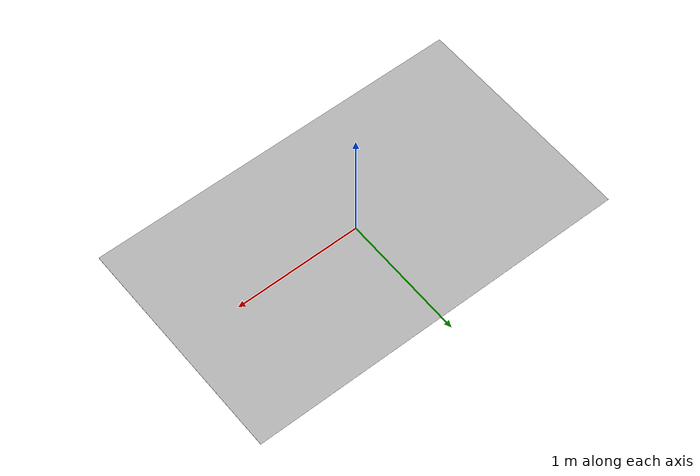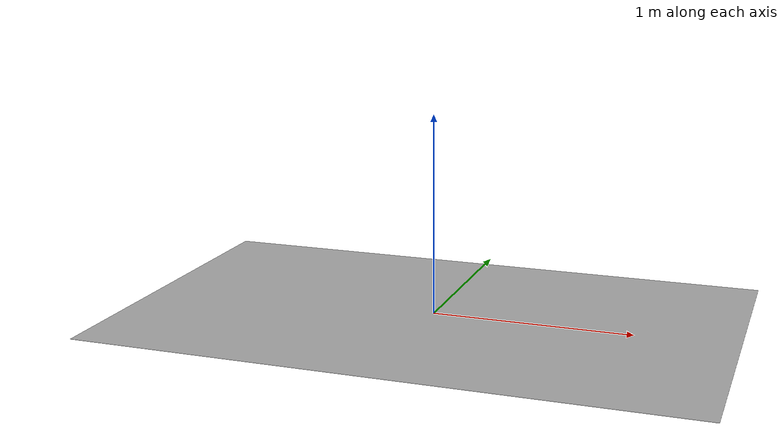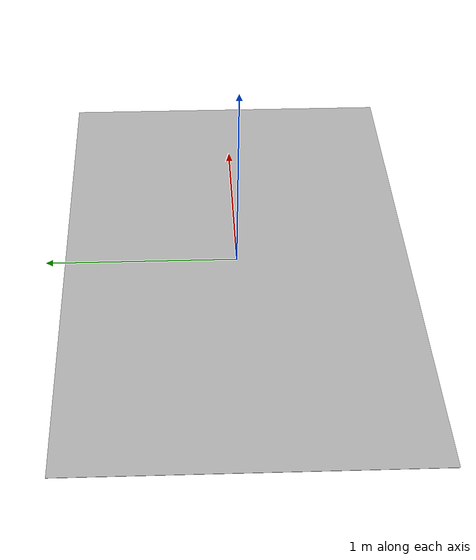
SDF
<?xml version="1.0"?>
<sdf version="1.4">
<model name="image_floor">
  <static>true</static>
    <link name="link">
      <visual name="visual">
        <cast_shadows>false</cast_shadows>
        <geometry>
          <plane>
            <normal>0 0 1</normal>
            <size>3.0 1.8</size>
          </plane>
        </geometry>
        <material>
          <script>
            <uri>model://image_floor/materials/scripts</uri>
            <uri>model://image_floor/materials/textures</uri>
            <name>ImageFloor/Image</name>
          </script>
        </material>
      </visual>
    </link>
  </model>
</sdf>
